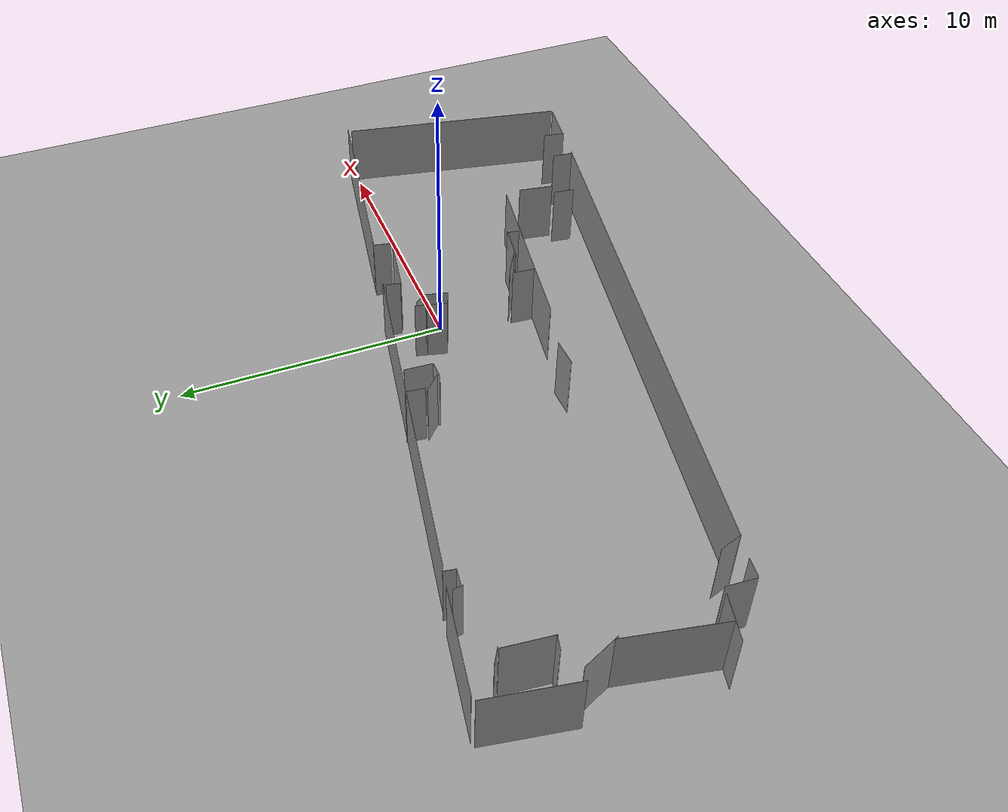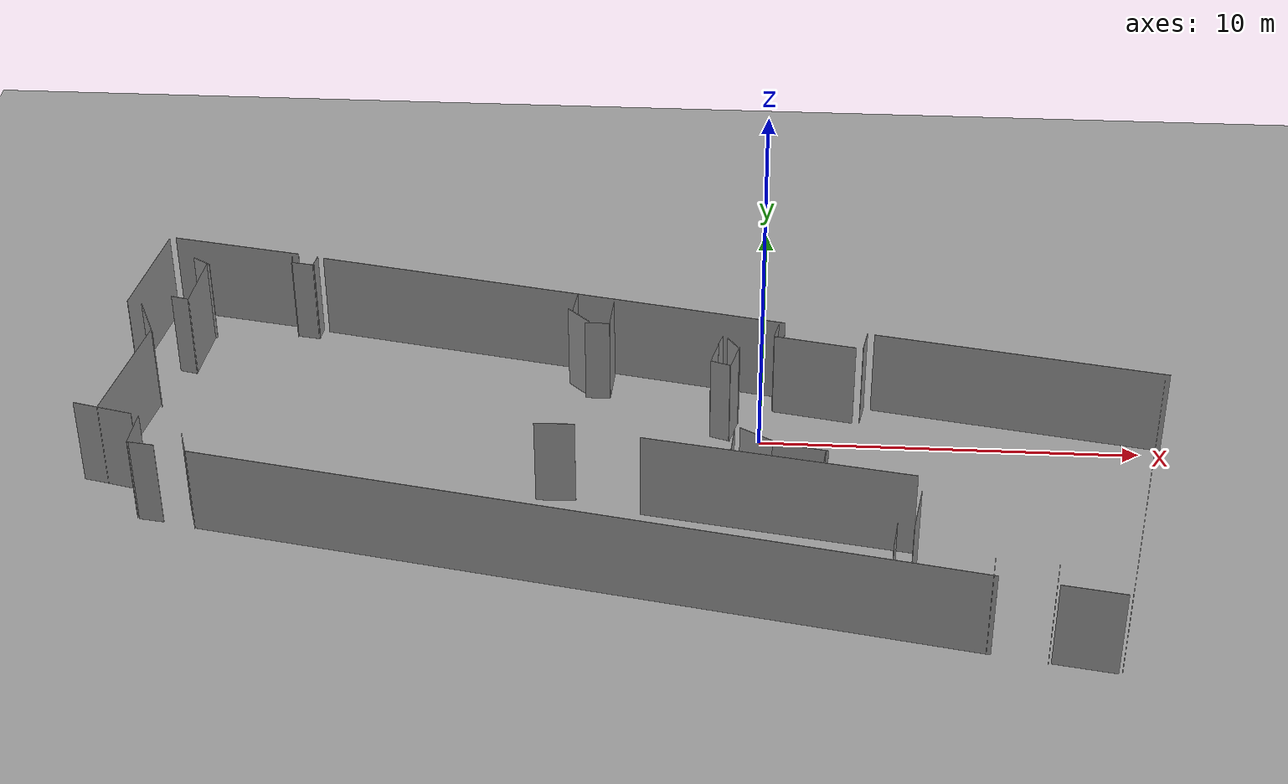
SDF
<sdf version="1.4">
 <world name="default">
  <light name="sun" type="directional">
   <pose>0 0 20 0 0 0</pose>
   <diffuse>0.8 0.8 0.8 1</diffuse>
   <specular>0.2 0.2 0.2 1</specular>
   <attenuation>
    <range>1000</range>
    <constant>0.90000000000000002</constant>
    <linear>0.01</linear>
    <quadratic>0.001</quadratic>
   </attenuation>
   <direction>-0.5 0.1 -0.9</direction>
  </light>
  <model name="imu_suc_test2">
   <static>1</static>
   <link name="wall_0">
    <collision name="wall_0_collision">
     <geometry><box><size>1.41077 0.01 2.5</size></box></geometry>
     <pose>0 0 1.25 0 0 0</pose>
    </collision>
    <visual name="wall_0_visual">
     <pose>0 0 1.25 0 0 0</pose>
     <geometry><box><size>1.41077 0.01 2.5</size></box></geometry>
     <material>
      <script><uri>file://media/materials/scripts/gazebo.material</uri><name>Gazebo/Grey</name></script>
     </material>
    </visual>
    <velocity_decay><linear>0</linear><angular>0</angular></velocity_decay>
    <pose>-16.438 1.354 0 0 0 -1.16106</pose>
   </link>
   <link name="wall_1">
    <collision name="wall_1_collision">
     <geometry><box><size>3.11195 0.01 2.5</size></box></geometry>
     <pose>0 0 1.25 0 0 0</pose>
    </collision>
    <visual name="wall_1_visual">
     <pose>0 0 1.25 0 0 0</pose>
     <geometry><box><size>3.11195 0.01 2.5</size></box></geometry>
     <material>
      <script><uri>file://media/materials/scripts/gazebo.material</uri><name>Gazebo/Grey</name></script>
     </material>
    </visual>
    <velocity_decay><linear>0</linear><angular>0</angular></velocity_decay>
    <pose>-16.8585 3.6245 0 0 0 -1.74096</pose>
   </link>
   <link name="wall_2">
    <collision name="wall_2_collision">
     <geometry><box><size>3.59615 0.01 2.5</size></box></geometry>
     <pose>0 0 1.25 0 0 0</pose>
    </collision>
    <visual name="wall_2_visual">
     <pose>0 0 1.25 0 0 0</pose>
     <geometry><box><size>3.59615 0.01 2.5</size></box></geometry>
     <material>
      <script><uri>file://media/materials/scripts/gazebo.material</uri><name>Gazebo/Grey</name></script>
     </material>
    </visual>
    <velocity_decay><linear>0</linear><angular>0</angular></velocity_decay>
    <pose>-14.6575 4.902 0 0 0 -0.172143</pose>
   </link>
   <link name="wall_3">
    <collision name="wall_3_collision">
     <geometry><box><size>3.50069 0.01 2.5</size></box></geometry>
     <pose>0 0 1.25 0 0 0</pose>
    </collision>
    <visual name="wall_3_visual">
     <pose>0 0 1.25 0 0 0</pose>
     <geometry><box><size>3.50069 0.01 2.5</size></box></geometry>
     <material>
      <script><uri>file://media/materials/scripts/gazebo.material</uri><name>Gazebo/Grey</name></script>
     </material>
    </visual>
    <velocity_decay><linear>0</linear><angular>0</angular></velocity_decay>
    <pose>-16.5475 -0.8955 0 0 0 -1.76483</pose>
   </link>
   <link name="wall_4">
    <collision name="wall_4_collision">
     <geometry><box><size>0.507437 0.01 2.5</size></box></geometry>
     <pose>0 0 1.25 0 0 0</pose>
    </collision>
    <visual name="wall_4_visual">
     <pose>0 0 1.25 0 0 0</pose>
     <geometry><box><size>0.507437 0.01 2.5</size></box></geometry>
     <material>
      <script><uri>file://media/materials/scripts/gazebo.material</uri><name>Gazebo/Grey</name></script>
     </material>
    </visual>
    <velocity_decay><linear>0</linear><angular>0</angular></velocity_decay>
    <pose>-15.74 2.329 0 0 0 -0.230639</pose>
   </link>
   <link name="wall_5">
    <collision name="wall_5_collision">
     <geometry><box><size>1.62163 0.01 2.5</size></box></geometry>
     <pose>0 0 1.25 0 0 0</pose>
    </collision>
    <visual name="wall_5_visual">
     <pose>0 0 1.25 0 0 0</pose>
     <geometry><box><size>1.62163 0.01 2.5</size></box></geometry>
     <material>
      <script><uri>file://media/materials/scripts/gazebo.material</uri><name>Gazebo/Grey</name></script>
     </material>
    </visual>
    <velocity_decay><linear>0</linear><angular>0</angular></velocity_decay>
    <pose>-16.752 -2.636 0 0 0 2.90379</pose>
   </link>
   <link name="wall_6">
    <collision name="wall_6_collision">
     <geometry><box><size>1.07462 0.01 2.5</size></box></geometry>
     <pose>0 0 1.25 0 0 0</pose>
    </collision>
    <visual name="wall_6_visual">
     <pose>0 0 1.25 0 0 0</pose>
     <geometry><box><size>1.07462 0.01 2.5</size></box></geometry>
     <material>
      <script><uri>file://media/materials/scripts/gazebo.material</uri><name>Gazebo/Grey</name></script>
     </material>
    </visual>
    <velocity_decay><linear>0</linear><angular>0</angular></velocity_decay>
    <pose>-15.7905 -3.437 0 0 0 -1.64065</pose>
   </link>
   <link name="wall_7">
    <collision name="wall_7_collision">
     <geometry><box><size>0.571136 0.01 2.5</size></box></geometry>
     <pose>0 0 1.25 0 0 0</pose>
    </collision>
    <visual name="wall_7_visual">
     <pose>0 0 1.25 0 0 0</pose>
     <geometry><box><size>0.571136 0.01 2.5</size></box></geometry>
     <material>
      <script><uri>file://media/materials/scripts/gazebo.material</uri><name>Gazebo/Grey</name></script>
     </material>
    </visual>
    <velocity_decay><linear>0</linear><angular>0</angular></velocity_decay>
    <pose>-15.497 4.11 0 0 0 -0.553031</pose>
   </link>
   <link name="wall_8">
    <collision name="wall_8_collision">
     <geometry><box><size>1.71845 0.01 2.5</size></box></geometry>
     <pose>0 0 1.25 0 0 0</pose>
    </collision>
    <visual name="wall_8_visual">
     <pose>0 0 1.25 0 0 0</pose>
     <geometry><box><size>1.71845 0.01 2.5</size></box></geometry>
     <material>
      <script><uri>file://media/materials/scripts/gazebo.material</uri><name>Gazebo/Grey</name></script>
     </material>
    </visual>
    <velocity_decay><linear>0</linear><angular>0</angular></velocity_decay>
    <pose>-15.417 3.1025 0 0 0 -1.67573</pose>
   </link>
   <link name="wall_9">
    <collision name="wall_9_collision">
     <geometry><box><size>0.662701 0.01 2.5</size></box></geometry>
     <pose>0 0 1.25 0 0 0</pose>
    </collision>
    <visual name="wall_9_visual">
     <pose>0 0 1.25 0 0 0</pose>
     <geometry><box><size>0.662701 0.01 2.5</size></box></geometry>
     <material>
      <script><uri>file://media/materials/scripts/gazebo.material</uri><name>Gazebo/Grey</name></script>
     </material>
    </visual>
    <velocity_decay><linear>0</linear><angular>0</angular></velocity_decay>
    <pose>-15.456 -4.033 0 0 0 2.99927</pose>
   </link>
   <link name="wall_10">
    <collision name="wall_10_collision">
     <geometry><box><size>0.859931 0.01 2.5</size></box></geometry>
     <pose>0 0 1.25 0 0 0</pose>
    </collision>
    <visual name="wall_10_visual">
     <pose>0 0 1.25 0 0 0</pose>
     <geometry><box><size>0.859931 0.01 2.5</size></box></geometry>
     <material>
      <script><uri>file://media/materials/scripts/gazebo.material</uri><name>Gazebo/Grey</name></script>
     </material>
    </visual>
    <velocity_decay><linear>0</linear><angular>0</angular></velocity_decay>
    <pose>-14.4125 -3.898 0 0 0 -1.26486</pose>
   </link>
   <link name="wall_11">
    <collision name="wall_11_collision">
     <geometry><box><size>20.3588 0.01 2.5</size></box></geometry>
     <pose>0 0 1.25 0 0 0</pose>
    </collision>
    <visual name="wall_11_visual">
     <pose>0 0 1.25 0 0 0</pose>
     <geometry><box><size>20.3588 0.01 2.5</size></box></geometry>
     <material>
      <script><uri>file://media/materials/scripts/gazebo.material</uri><name>Gazebo/Grey</name></script>
     </material>
    </visual>
    <velocity_decay><linear>0</linear><angular>0</angular></velocity_decay>
    <pose>-4.288 -6.109 0 0 0 -0.181057</pose>
   </link>
   <link name="wall_12">
    <collision name="wall_12_collision">
     <geometry><box><size>0.347428 0.01 2.5</size></box></geometry>
     <pose>0 0 1.25 0 0 0</pose>
    </collision>
    <visual name="wall_12_visual">
     <pose>0 0 1.25 0 0 0</pose>
     <geometry><box><size>0.347428 0.01 2.5</size></box></geometry>
     <material>
      <script><uri>file://media/materials/scripts/gazebo.material</uri><name>Gazebo/Grey</name></script>
     </material>
    </visual>
    <velocity_decay><linear>0</linear><angular>0</angular></velocity_decay>
    <pose>-13.0245 4.2895 0 0 0 -1.45251</pose>
   </link>
   <link name="wall_13">
    <collision name="wall_13_collision">
     <geometry><box><size>0.630202 0.01 2.5</size></box></geometry>
     <pose>0 0 1.25 0 0 0</pose>
    </collision>
    <visual name="wall_13_visual">
     <pose>0 0 1.25 0 0 0</pose>
     <geometry><box><size>0.630202 0.01 2.5</size></box></geometry>
     <material>
      <script><uri>file://media/materials/scripts/gazebo.material</uri><name>Gazebo/Grey</name></script>
     </material>
    </visual>
    <velocity_decay><linear>0</linear><angular>0</angular></velocity_decay>
    <pose>-12.6885 4.1295 0 0 0 2.99027</pose>
   </link>
   <link name="wall_14">
    <collision name="wall_14_collision">
     <geometry><box><size>0.439769 0.01 2.5</size></box></geometry>
     <pose>0 0 1.25 0 0 0</pose>
    </collision>
    <visual name="wall_14_visual">
     <pose>0 0 1.25 0 0 0</pose>
     <geometry><box><size>0.439769 0.01 2.5</size></box></geometry>
     <material>
      <script><uri>file://media/materials/scripts/gazebo.material</uri><name>Gazebo/Grey</name></script>
     </material>
    </visual>
    <velocity_decay><linear>0</linear><angular>0</angular></velocity_decay>
    <pose>-12.3715 4.288 0 0 0 -1.73295</pose>
   </link>
   <link name="wall_15">
    <collision name="wall_15_collision">
     <geometry><box><size>12.9777 0.01 2.5</size></box></geometry>
     <pose>0 0 1.25 0 0 0</pose>
    </collision>
    <visual name="wall_15_visual">
     <pose>0 0 1.25 0 0 0</pose>
     <geometry><box><size>12.9777 0.01 2.5</size></box></geometry>
     <material>
      <script><uri>file://media/materials/scripts/gazebo.material</uri><name>Gazebo/Grey</name></script>
     </material>
    </visual>
    <velocity_decay><linear>0</linear><angular>0</angular></velocity_decay>
    <pose>-5.795 3.2295 0 0 0 -0.185925</pose>
   </link>
   <link name="wall_16">
    <collision name="wall_16_collision">
     <geometry><box><size>1.04012 0.01 2.5</size></box></geometry>
     <pose>0 0 1.25 0 0 0</pose>
    </collision>
    <visual name="wall_16_visual">
     <pose>0 0 1.25 0 0 0</pose>
     <geometry><box><size>1.04012 0.01 2.5</size></box></geometry>
     <material>
      <script><uri>file://media/materials/scripts/gazebo.material</uri><name>Gazebo/Grey</name></script>
     </material>
    </visual>
    <velocity_decay><linear>0</linear><angular>0</angular></velocity_decay>
    <pose>-5.196 -2.667 0 0 0 0.0153834</pose>
   </link>
   <link name="wall_17">
    <collision name="wall_17_collision">
     <geometry><box><size>0.836035 0.01 2.5</size></box></geometry>
     <pose>0 0 1.25 0 0 0</pose>
    </collision>
    <visual name="wall_17_visual">
     <pose>0 0 1.25 0 0 0</pose>
     <geometry><box><size>0.836035 0.01 2.5</size></box></geometry>
     <material>
      <script><uri>file://media/materials/scripts/gazebo.material</uri><name>Gazebo/Grey</name></script>
     </material>
    </visual>
    <velocity_decay><linear>0</linear><angular>0</angular></velocity_decay>
    <pose>-4.9385 2.1055 0 0 0 -0.761714</pose>
   </link>
   <link name="wall_18">
    <collision name="wall_18_collision">
     <geometry><box><size>0.710862 0.01 2.5</size></box></geometry>
     <pose>0 0 1.25 0 0 0</pose>
    </collision>
    <visual name="wall_18_visual">
     <pose>0 0 1.25 0 0 0</pose>
     <geometry><box><size>0.710862 0.01 2.5</size></box></geometry>
     <material>
      <script><uri>file://media/materials/scripts/gazebo.material</uri><name>Gazebo/Grey</name></script>
     </material>
    </visual>
    <velocity_decay><linear>0</linear><angular>0</angular></velocity_decay>
    <pose>-5.066 2.7605 0 0 0 -1.67508</pose>
   </link>
   <link name="wall_19">
    <collision name="wall_19_collision">
     <geometry><box><size>0.66 0.01 2.5</size></box></geometry>
     <pose>0 0 1.25 0 0 0</pose>
    </collision>
    <visual name="wall_19_visual">
     <pose>0 0 1.25 0 0 0</pose>
     <geometry><box><size>0.66 0.01 2.5</size></box></geometry>
     <material>
      <script><uri>file://media/materials/scripts/gazebo.material</uri><name>Gazebo/Grey</name></script>
     </material>
    </visual>
    <velocity_decay><linear>0</linear><angular>0</angular></velocity_decay>
    <pose>-4.416 1.762 0 0 0 0</pose>
   </link>
   <link name="wall_20">
    <collision name="wall_20_collision">
     <geometry><box><size>1.04545 0.01 2.5</size></box></geometry>
     <pose>0 0 1.25 0 0 0</pose>
    </collision>
    <visual name="wall_20_visual">
     <pose>0 0 1.25 0 0 0</pose>
     <geometry><box><size>1.04545 0.01 2.5</size></box></geometry>
     <material>
      <script><uri>file://media/materials/scripts/gazebo.material</uri><name>Gazebo/Grey</name></script>
     </material>
    </visual>
    <velocity_decay><linear>0</linear><angular>0</angular></velocity_decay>
    <pose>-4.0585 2.284 0 0 0 -1.62343</pose>
   </link>
   <link name="wall_21">
    <collision name="wall_21_collision">
     <geometry><box><size>7.03595 0.01 2.5</size></box></geometry>
     <pose>0 0 1.25 0 0 0</pose>
    </collision>
    <visual name="wall_21_visual">
     <pose>0 0 1.25 0 0 0</pose>
     <geometry><box><size>7.03595 0.01 2.5</size></box></geometry>
     <material>
      <script><uri>file://media/materials/scripts/gazebo.material</uri><name>Gazebo/Grey</name></script>
     </material>
    </visual>
    <velocity_decay><linear>0</linear><angular>0</angular></velocity_decay>
    <pose>0.4805 -3.701 0 0 0 -0.1662</pose>
   </link>
   <link name="wall_22">
    <collision name="wall_22_collision">
     <geometry><box><size>0.538536 0.01 2.5</size></box></geometry>
     <pose>0 0 1.25 0 0 0</pose>
    </collision>
    <visual name="wall_22_visual">
     <pose>0 0 1.25 0 0 0</pose>
     <geometry><box><size>0.538536 0.01 2.5</size></box></geometry>
     <material>
      <script><uri>file://media/materials/scripts/gazebo.material</uri><name>Gazebo/Grey</name></script>
     </material>
    </visual>
    <velocity_decay><linear>0</linear><angular>0</angular></velocity_decay>
    <pose>-1.0775 0.14 0 0 0 -0.321163</pose>
   </link>
   <link name="wall_23">
    <collision name="wall_23_collision">
     <geometry><box><size>0.734641 0.01 2.5</size></box></geometry>
     <pose>0 0 1.25 0 0 0</pose>
    </collision>
    <visual name="wall_23_visual">
     <pose>0 0 1.25 0 0 0</pose>
     <geometry><box><size>0.734641 0.01 2.5</size></box></geometry>
     <material>
      <script><uri>file://media/materials/scripts/gazebo.material</uri><name>Gazebo/Grey</name></script>
     </material>
    </visual>
    <velocity_decay><linear>0</linear><angular>0</angular></velocity_decay>
    <pose>-1.2445 0.5755 0 0 0 -1.81412</pose>
   </link>
   <link name="wall_24">
    <collision name="wall_24_collision">
     <geometry><box><size>0.399592 0.01 2.5</size></box></geometry>
     <pose>0 0 1.25 0 0 0</pose>
    </collision>
    <visual name="wall_24_visual">
     <pose>0 0 1.25 0 0 0</pose>
     <geometry><box><size>0.399592 0.01 2.5</size></box></geometry>
     <material>
      <script><uri>file://media/materials/scripts/gazebo.material</uri><name>Gazebo/Grey</name></script>
     </material>
    </visual>
    <velocity_decay><linear>0</linear><angular>0</angular></velocity_decay>
    <pose>-1.1025 1.1685 0 0 0 -1.84188</pose>
   </link>
   <link name="wall_25">
    <collision name="wall_25_collision">
     <geometry><box><size>0.565022 0.01 2.5</size></box></geometry>
     <pose>0 0 1.25 0 0 0</pose>
    </collision>
    <visual name="wall_25_visual">
     <pose>0 0 1.25 0 0 0</pose>
     <geometry><box><size>0.565022 0.01 2.5</size></box></geometry>
     <material>
      <script><uri>file://media/materials/scripts/gazebo.material</uri><name>Gazebo/Grey</name></script>
     </material>
    </visual>
    <velocity_decay><linear>0</linear><angular>0</angular></velocity_decay>
    <pose>-0.7555 1.0265 0 0 0 -0.936145</pose>
   </link>
   <link name="wall_26">
    <collision name="wall_26_collision">
     <geometry><box><size>0.828399 0.01 2.5</size></box></geometry>
     <pose>0 0 1.25 0 0 0</pose>
    </collision>
    <visual name="wall_26_visual">
     <pose>0 0 1.25 0 0 0</pose>
     <geometry><box><size>0.828399 0.01 2.5</size></box></geometry>
     <material>
      <script><uri>file://media/materials/scripts/gazebo.material</uri><name>Gazebo/Grey</name></script>
     </material>
    </visual>
    <velocity_decay><linear>0</linear><angular>0</angular></velocity_decay>
    <pose>-0.6605 -3.055 0 0 0 -1.64692</pose>
   </link>
   <link name="wall_27">
    <collision name="wall_27_collision">
     <geometry><box><size>0.896193 0.01 2.5</size></box></geometry>
     <pose>0 0 1.25 0 0 0</pose>
    </collision>
    <visual name="wall_27_visual">
     <pose>0 0 1.25 0 0 0</pose>
     <geometry><box><size>0.896193 0.01 2.5</size></box></geometry>
     <material>
      <script><uri>file://media/materials/scripts/gazebo.material</uri><name>Gazebo/Grey</name></script>
     </material>
    </visual>
    <velocity_decay><linear>0</linear><angular>0</angular></velocity_decay>
    <pose>-0.7085 0.4265 0 0 0 -1.80847</pose>
   </link>
   <link name="wall_28">
    <collision name="wall_28_collision">
     <geometry><box><size>1.15956 0.01 2.5</size></box></geometry>
     <pose>0 0 1.25 0 0 0</pose>
    </collision>
    <visual name="wall_28_visual">
     <pose>0 0 1.25 0 0 0</pose>
     <geometry><box><size>1.15956 0.01 2.5</size></box></geometry>
     <material>
      <script><uri>file://media/materials/scripts/gazebo.material</uri><name>Gazebo/Grey</name></script>
     </material>
    </visual>
    <velocity_decay><linear>0</linear><angular>0</angular></velocity_decay>
    <pose>0.006 -2.8725 0 0 0 -0.530806</pose>
   </link>
   <link name="wall_29">
    <collision name="wall_29_collision">
     <geometry><box><size>1.42655 0.01 2.5</size></box></geometry>
     <pose>0 0 1.25 0 0 0</pose>
    </collision>
    <visual name="wall_29_visual">
     <pose>0 0 1.25 0 0 0</pose>
     <geometry><box><size>1.42655 0.01 2.5</size></box></geometry>
     <material>
      <script><uri>file://media/materials/scripts/gazebo.material</uri><name>Gazebo/Grey</name></script>
     </material>
    </visual>
    <velocity_decay><linear>0</linear><angular>0</angular></velocity_decay>
    <pose>1.0345 -3.2815 0 0 0 -0.174022</pose>
   </link>
   <link name="wall_30">
    <collision name="wall_30_collision">
     <geometry><box><size>0.534858 0.01 2.5</size></box></geometry>
     <pose>0 0 1.25 0 0 0</pose>
    </collision>
    <visual name="wall_30_visual">
     <pose>0 0 1.25 0 0 0</pose>
     <geometry><box><size>0.534858 0.01 2.5</size></box></geometry>
     <material>
      <script><uri>file://media/materials/scripts/gazebo.material</uri><name>Gazebo/Grey</name></script>
     </material>
    </visual>
    <velocity_decay><linear>0</linear><angular>0</angular></velocity_decay>
    <pose>0.36 1.7015 0 0 0 -1.78176</pose>
   </link>
   <link name="wall_31">
    <collision name="wall_31_collision">
     <geometry><box><size>0.438634 0.01 2.5</size></box></geometry>
     <pose>0 0 1.25 0 0 0</pose>
    </collision>
    <visual name="wall_31_visual">
     <pose>0 0 1.25 0 0 0</pose>
     <geometry><box><size>0.438634 0.01 2.5</size></box></geometry>
     <material>
      <script><uri>file://media/materials/scripts/gazebo.material</uri><name>Gazebo/Grey</name></script>
     </material>
    </visual>
    <velocity_decay><linear>0</linear><angular>0</angular></velocity_decay>
    <pose>1.642 -3.623 0 0 0 1.46115</pose>
   </link>
   <link name="wall_32">
    <collision name="wall_32_collision">
     <geometry><box><size>2.18861 0.01 2.5</size></box></geometry>
     <pose>0 0 1.25 0 0 0</pose>
    </collision>
    <visual name="wall_32_visual">
     <pose>0 0 1.25 0 0 0</pose>
     <geometry><box><size>2.18861 0.01 2.5</size></box></geometry>
     <material>
      <script><uri>file://media/materials/scripts/gazebo.material</uri><name>Gazebo/Grey</name></script>
     </material>
    </visual>
    <velocity_decay><linear>0</linear><angular>0</angular></velocity_decay>
    <pose>1.3905 1.203 0 0 0 2.95594</pose>
   </link>
   <link name="wall_33">
    <collision name="wall_33_collision">
     <geometry><box><size>0.66143 0.01 2.5</size></box></geometry>
     <pose>0 0 1.25 0 0 0</pose>
    </collision>
    <visual name="wall_33_visual">
     <pose>0 0 1.25 0 0 0</pose>
     <geometry><box><size>0.66143 0.01 2.5</size></box></geometry>
     <material>
      <script><uri>file://media/materials/scripts/gazebo.material</uri><name>Gazebo/Grey</name></script>
     </material>
    </visual>
    <velocity_decay><linear>0</linear><angular>0</angular></velocity_decay>
    <pose>2.7115 1.3405 0 0 0 -1.74862</pose>
   </link>
   <link name="wall_34">
    <collision name="wall_34_collision">
     <geometry><box><size>7.75925 0.01 2.5</size></box></geometry>
     <pose>0 0 1.25 0 0 0</pose>
    </collision>
    <visual name="wall_34_visual">
     <pose>0 0 1.25 0 0 0</pose>
     <geometry><box><size>7.75925 0.01 2.5</size></box></geometry>
     <material>
      <script><uri>file://media/materials/scripts/gazebo.material</uri><name>Gazebo/Grey</name></script>
     </material>
    </visual>
    <velocity_decay><linear>0</linear><angular>0</angular></velocity_decay>
    <pose>6.7735 0.9265 0 0 0 -0.179196</pose>
   </link>
   <link name="wall_35">
    <collision name="wall_35_collision">
     <geometry><box><size>0.80114 0.01 2.5</size></box></geometry>
     <pose>0 0 1.25 0 0 0</pose>
    </collision>
    <visual name="wall_35_visual">
     <pose>0 0 1.25 0 0 0</pose>
     <geometry><box><size>0.80114 0.01 2.5</size></box></geometry>
     <material>
      <script><uri>file://media/materials/scripts/gazebo.material</uri><name>Gazebo/Grey</name></script>
     </material>
    </visual>
    <velocity_decay><linear>0</linear><angular>0</angular></velocity_decay>
    <pose>3.3465 -6.5255 0 0 0 -1.69469</pose>
   </link>
   <link name="wall_36">
    <collision name="wall_36_collision">
     <geometry><box><size>1.33692 0.01 2.5</size></box></geometry>
     <pose>0 0 1.25 0 0 0</pose>
    </collision>
    <visual name="wall_36_visual">
     <pose>0 0 1.25 0 0 0</pose>
     <geometry><box><size>1.33692 0.01 2.5</size></box></geometry>
     <material>
      <script><uri>file://media/materials/scripts/gazebo.material</uri><name>Gazebo/Grey</name></script>
     </material>
    </visual>
    <velocity_decay><linear>0</linear><angular>0</angular></velocity_decay>
    <pose>3.914 -5.553 0 0 0 -1.73004</pose>
   </link>
   <link name="wall_37">
    <collision name="wall_37_collision">
     <geometry><box><size>0.821745 0.01 2.5</size></box></geometry>
     <pose>0 0 1.25 0 0 0</pose>
    </collision>
    <visual name="wall_37_visual">
     <pose>0 0 1.25 0 0 0</pose>
     <geometry><box><size>0.821745 0.01 2.5</size></box></geometry>
     <material>
      <script><uri>file://media/materials/scripts/gazebo.material</uri><name>Gazebo/Grey</name></script>
     </material>
    </visual>
    <velocity_decay><linear>0</linear><angular>0</angular></velocity_decay>
    <pose>5.6615 -7.543 0 0 0 -1.68911</pose>
   </link>
   <link name="wall_38">
    <collision name="wall_38_collision">
     <geometry><box><size>0.843168 0.01 2.5</size></box></geometry>
     <pose>0 0 1.25 0 0 0</pose>
    </collision>
    <visual name="wall_38_visual">
     <pose>0 0 1.25 0 0 0</pose>
     <geometry><box><size>0.843168 0.01 2.5</size></box></geometry>
     <material>
      <script><uri>file://media/materials/scripts/gazebo.material</uri><name>Gazebo/Grey</name></script>
     </material>
    </visual>
    <velocity_decay><linear>0</linear><angular>0</angular></velocity_decay>
    <pose>7.147 -7.8 0 0 0 -1.7184</pose>
   </link>
   <link name="wall_39">
    <collision name="wall_39_collision">
     <geometry><box><size>1.60914 0.01 2.5</size></box></geometry>
     <pose>0 0 1.25 0 0 0</pose>
    </collision>
    <visual name="wall_39_visual">
     <pose>0 0 1.25 0 0 0</pose>
     <geometry><box><size>1.60914 0.01 2.5</size></box></geometry>
     <material>
      <script><uri>file://media/materials/scripts/gazebo.material</uri><name>Gazebo/Grey</name></script>
     </material>
    </visual>
    <velocity_decay><linear>0</linear><angular>0</angular></velocity_decay>
    <pose>7.9495 -8.314 0 0 0 2.97552</pose>
   </link>
   <link name="wall_40">
    <collision name="wall_40_collision">
     <geometry><box><size>8.70247 0.01 2.5</size></box></geometry>
     <pose>0 0 1.25 0 0 0</pose>
    </collision>
    <visual name="wall_40_visual">
     <pose>0 0 1.25 0 0 0</pose>
     <geometry><box><size>8.70247 0.01 2.5</size></box></geometry>
     <material>
      <script><uri>file://media/materials/scripts/gazebo.material</uri><name>Gazebo/Grey</name></script>
     </material>
    </visual>
    <velocity_decay><linear>0</linear><angular>0</angular></velocity_decay>
    <pose>9.638 -4.1505 0 0 0 -1.75641</pose>
   </link>
  </model>
  <physics type="ode">
   <max_step_size>0.001</max_step_size>
   <real_time_factor>1</real_time_factor>
   <real_time_update_rate>1000</real_time_update_rate>
   <gravity>0 0 -9.8</gravity>
  </physics>
  <scene><ambient>0.4 0.4 0.4 1</ambient><background>0.7 0.7 0.7 1</background><shadows>1</shadows></scene>
  <spherical_coordinates>
   <surface_model>EARTH_WGS84</surface_model>
   <latitude_deg>0</latitude_deg>
   <longitude_deg>0</longitude_deg>
   <elevation>0</elevation>
   <heading_deg>0</heading_deg>
  </spherical_coordinates>
  <light name="sun" type="directional">
   <pose>-14 -1 10 0 0 0</pose>
   <diffuse>0.8 0.8 0.8 1</diffuse>
   <specular>0.2 0.2 0.2 1</specular>
   <attenuation>
    <range>1000</range>
    <constant>0.90000000000000002</constant>
    <linear>0.01</linear>
    <quadratic>0.001</quadratic>
   </attenuation>
   <direction>-0.5 0.1 -0.9</direction>
  </light>
  <model name="ground_plane_0">
   <static>1</static>
   <link name="link">
    <collision name="collision">
     <geometry><plane><normal>0 0 1</normal><size>100 100</size></plane></geometry>
     <surface><friction><ode><mu>100</mu><mu2>50</mu2></ode></friction></surface>
    </collision>
    <visual name="visual">
     <cast_shadows>0</cast_shadows>
     <geometry><plane><normal>0 0 1</normal><size>100 100</size></plane></geometry>
     <material>
      <script><uri>file://media/materials/scripts/gazebo.material</uri><name>Gazebo/Grey</name></script>
     </material>
    </visual>
    <velocity_decay><linear>0</linear><angular>0</angular></velocity_decay>
   </link>
   <pose>4.53846 -8 0 0 0 0</pose>
  </model>
 </world>
</sdf>
